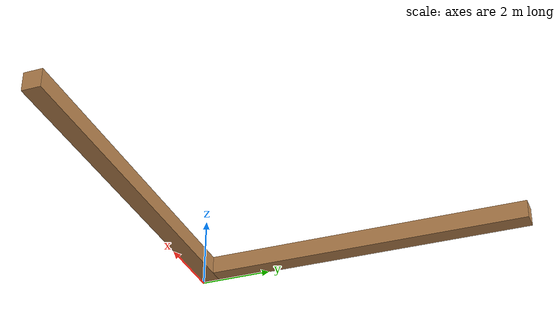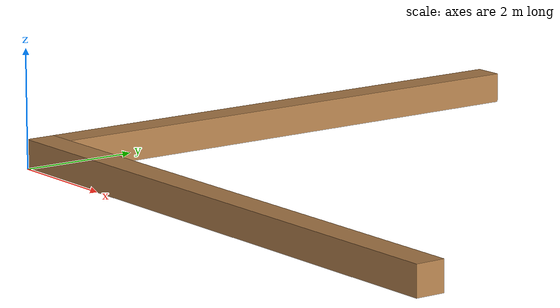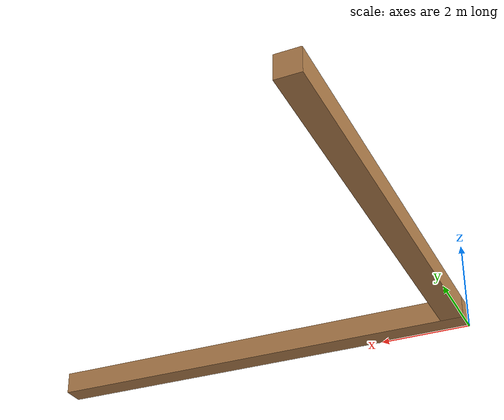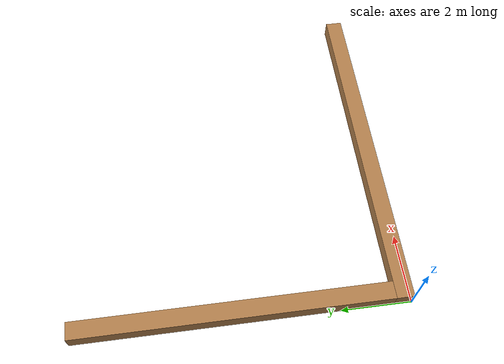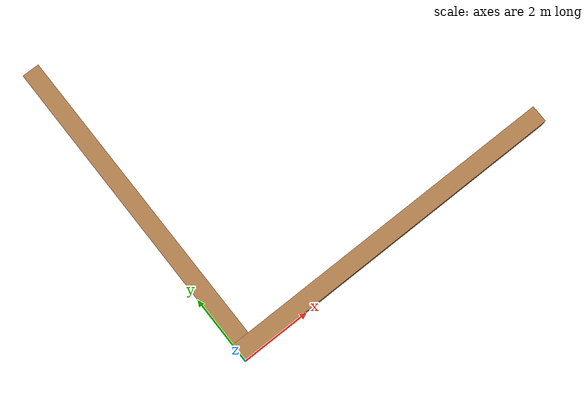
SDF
<?xml version='1.0'?>
<sdf version='1.7'>
  <model name='walls_test'>
    <pose>5 4.75 0 0 -0 0</pose>
    <link name='Wall_11'>
      <collision name='Wall_11_Collision'>
        <geometry>
          <box>
            <size>9 0.5 0.5</size>
          </box>
        </geometry>
        <pose>0 0 0.25 0 -0 0</pose>
      </collision>
      <visual name='Wall_11_Visual'>
        <pose>0 0 0.25 0 -0 0</pose>
        <geometry>
          <box>
            <size>9 0.5 0.5</size>
          </box>
        </geometry>
        <material>
          <script>
            <uri>file://media/materials/scripts/gazebo.material</uri>
            <name>Gazebo/Wood</name>
          </script>
          <ambient>1 1 1 1</ambient>
        </material>
        <meta>
          <layer>0</layer>
        </meta>
      </visual>
      <pose>-4.75 0.25 0 0 -0 1.5708</pose>
    </link>
    <link name='Wall_9'>
      <collision name='Wall_9_Collision'>
        <geometry>
          <box>
            <size>10 0.5 0.5</size>
          </box>
        </geometry>
        <pose>0 0 0.25 0 -0 0</pose>
      </collision>
      <visual name='Wall_9_Visual'>
        <pose>0 0 0.25 0 -0 0</pose>
        <geometry>
          <box>
            <size>10 0.5 0.5</size>
          </box>
        </geometry>
        <material>
          <script>
            <uri>file://media/materials/scripts/gazebo.material</uri>
            <name>Gazebo/Wood</name>
          </script>
          <ambient>1 1 1 1</ambient>
        </material>
        <meta>
          <layer>0</layer>
        </meta>
      </visual>
      <pose>0 -4.5 0 0 -0 0</pose>
    </link>
    <static>1</static>
  </model>
</sdf>
